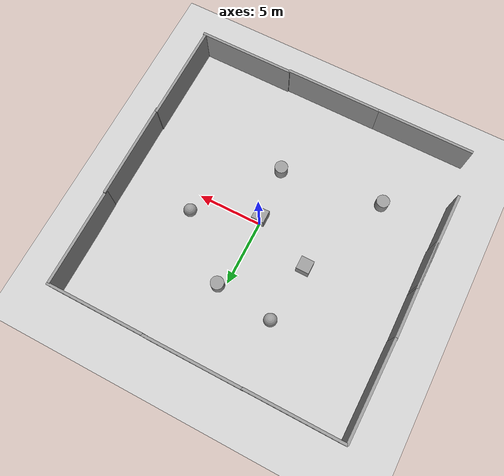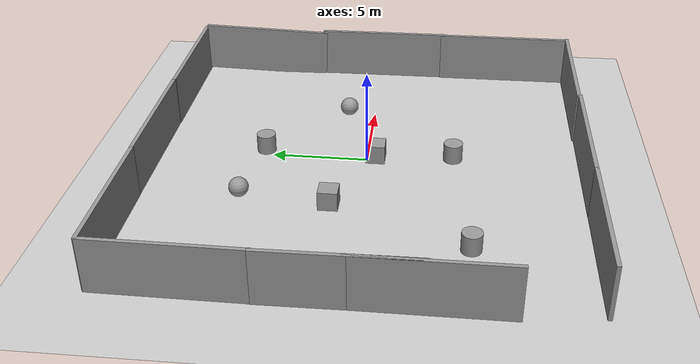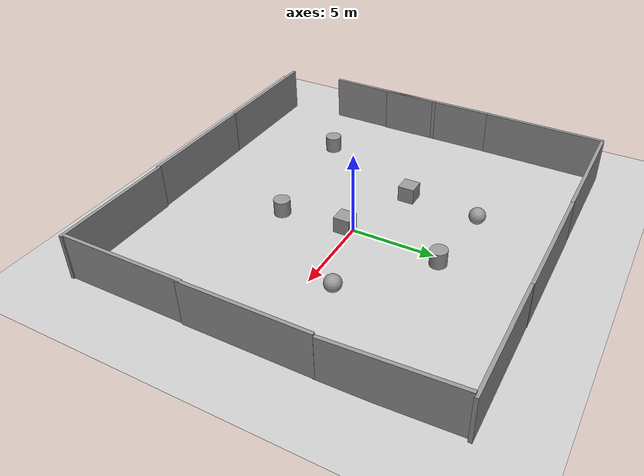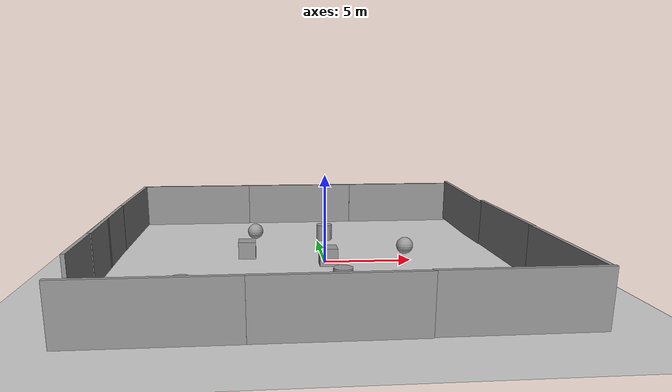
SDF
<sdf version="1.6">
 <world name="default">
  <light name="sun" type="directional">
   <pose>0 0 10 0 -0 0</pose>
   <diffuse>0.8 0.8 0.8 1</diffuse>
   <specular>0.2 0.2 0.2 1</specular>
   <attenuation>
    <range>1000</range>
    <constant>0.9</constant>
    <linear>0.01</linear>
    <quadratic>0.001</quadratic>
   </attenuation>
   <direction>-0.5 0.1 -0.9</direction>
  </light>
  <model name="ground_plane">
   <static>1</static>
   <link name="link">
    <collision name="collision">
     <geometry><plane><normal>0 0 1</normal><size>100 100</size></plane></geometry>
     <surface><friction><ode><mu>100</mu><mu2>50</mu2></ode></friction></surface>
    </collision>
    <visual name="visual">
     <cast_shadows>0</cast_shadows>
     <geometry><plane><normal>0 0 1</normal><size>100 100</size></plane></geometry>
     <material>
      <script><uri>file://media/materials/scripts/gazebo.material</uri><name>Gazebo/Grey</name></script>
     </material>
    </visual>
    <velocity_decay><linear>0</linear><angular>0</angular></velocity_decay>
   </link>
  </model>
  <physics name="default_physics" default="0" type="ode">
   <max_step_size>0.001</max_step_size>
   <real_time_factor>1</real_time_factor>
   <real_time_update_rate>1000</real_time_update_rate>
  </physics>
  <scene><ambient>0.4 0.4 0.4 1</ambient><background>0.7 0.7 0.7 1</background><shadows>1</shadows></scene>
  <model name="grey_wall">
   <static>1</static>
   <link name="link">
    <pose>0 0 1.4 0 -0 0</pose>
    <collision name="collision"><geometry><box><size>7.5 0.2 2.8</size></box></geometry></collision>
    <visual name="visual">
     <cast_shadows>0</cast_shadows>
     <geometry><box><size>7.5 0.2 2.8</size></box></geometry>
     <material>
      <script>
       <uri>model://grey_wall/materials/scripts</uri>
       <uri>model://grey_wall/materials/textures</uri>
       <name>vrc/grey_wall</name>
      </script>
     </material>
    </visual>
    <velocity_decay><linear>0</linear><angular>0</angular></velocity_decay>
   </link>
   <pose>-8.23095 11.0014 0 0 -0 0</pose>
  </model>
  <model name="grey_wall_0">
   <static>1</static>
   <link name="link">
    <pose>0 0 1.4 0 -0 0</pose>
    <collision name="collision"><geometry><box><size>7.5 0.2 2.8</size></box></geometry></collision>
    <visual name="visual">
     <cast_shadows>0</cast_shadows>
     <geometry><box><size>7.5 0.2 2.8</size></box></geometry>
     <material>
      <script>
       <uri>model://grey_wall/materials/scripts</uri>
       <uri>model://grey_wall/materials/textures</uri>
       <name>vrc/grey_wall</name>
      </script>
     </material>
    </visual>
    <velocity_decay><linear>0</linear><angular>0</angular></velocity_decay>
   </link>
   <pose>-0.796756 11.0181 0 0 -0 0</pose>
  </model>
  <model name="grey_wall_1">
   <static>1</static>
   <link name="link">
    <pose>0 0 1.4 0 -0 0</pose>
    <collision name="collision"><geometry><box><size>7.5 0.2 2.8</size></box></geometry></collision>
    <visual name="visual">
     <cast_shadows>0</cast_shadows>
     <geometry><box><size>7.5 0.2 2.8</size></box></geometry>
     <material>
      <script>
       <uri>model://grey_wall/materials/scripts</uri>
       <uri>model://grey_wall/materials/textures</uri>
       <name>vrc/grey_wall</name>
      </script>
     </material>
    </visual>
    <velocity_decay><linear>0</linear><angular>0</angular></velocity_decay>
   </link>
   <pose>6.69405 10.9984 0 0 -0 0</pose>
  </model>
  <model name="grey_wall_2">
   <static>1</static>
   <link name="link">
    <pose>0 0 1.4 0 -0 0</pose>
    <collision name="collision"><geometry><box><size>7.5 0.2 2.8</size></box></geometry></collision>
    <visual name="visual">
     <cast_shadows>0</cast_shadows>
     <geometry><box><size>7.5 0.2 2.8</size></box></geometry>
     <material>
      <script>
       <uri>model://grey_wall/materials/scripts</uri>
       <uri>model://grey_wall/materials/textures</uri>
       <name>vrc/grey_wall</name>
      </script>
     </material>
    </visual>
    <velocity_decay><linear>0</linear><angular>0</angular></velocity_decay>
   </link>
   <pose>-7.95346 -11.1906 0 0 -0 0</pose>
  </model>
  <model name="grey_wall_3">
   <static>1</static>
   <link name="link">
    <pose>0 0 1.4 0 -0 0</pose>
    <collision name="collision"><geometry><box><size>7.5 0.2 2.8</size></box></geometry></collision>
    <visual name="visual">
     <cast_shadows>0</cast_shadows>
     <geometry><box><size>7.5 0.2 2.8</size></box></geometry>
     <material>
      <script>
       <uri>model://grey_wall/materials/scripts</uri>
       <uri>model://grey_wall/materials/textures</uri>
       <name>vrc/grey_wall</name>
      </script>
     </material>
    </visual>
    <velocity_decay><linear>0</linear><angular>0</angular></velocity_decay>
   </link>
   <pose>-0.524266 -11.1812 0 0 -0 0</pose>
  </model>
  <model name="grey_wall_4">
   <static>1</static>
   <link name="link">
    <pose>0 0 1.4 0 -0 0</pose>
    <collision name="collision"><geometry><box><size>7.5 0.2 2.8</size></box></geometry></collision>
    <visual name="visual">
     <cast_shadows>0</cast_shadows>
     <geometry><box><size>7.5 0.2 2.8</size></box></geometry>
     <material>
      <script>
       <uri>model://grey_wall/materials/scripts</uri>
       <uri>model://grey_wall/materials/textures</uri>
       <name>vrc/grey_wall</name>
      </script>
     </material>
    </visual>
    <velocity_decay><linear>0</linear><angular>0</angular></velocity_decay>
   </link>
   <pose>6.84897 -11.1085 0 0 -0 0</pose>
  </model>
  <model name="grey_wall_5">
   <static>1</static>
   <link name="link">
    <pose>0 0 1.4 0 -0 0</pose>
    <collision name="collision"><geometry><box><size>7.5 0.2 2.8</size></box></geometry></collision>
    <visual name="visual">
     <cast_shadows>0</cast_shadows>
     <geometry><box><size>7.5 0.2 2.8</size></box></geometry>
     <material>
      <script>
       <uri>model://grey_wall/materials/scripts</uri>
       <uri>model://grey_wall/materials/textures</uri>
       <name>vrc/grey_wall</name>
      </script>
     </material>
    </visual>
    <velocity_decay><linear>0</linear><angular>0</angular></velocity_decay>
   </link>
   <pose>10.4206 -7.28777 0 0 0 -1.57076</pose>
  </model>
  <model name="grey_wall_6">
   <static>1</static>
   <link name="link">
    <pose>0 0 1.4 0 -0 0</pose>
    <collision name="collision"><geometry><box><size>7.5 0.2 2.8</size></box></geometry></collision>
    <visual name="visual">
     <cast_shadows>0</cast_shadows>
     <geometry><box><size>7.5 0.2 2.8</size></box></geometry>
     <material>
      <script>
       <uri>model://grey_wall/materials/scripts</uri>
       <uri>model://grey_wall/materials/textures</uri>
       <name>vrc/grey_wall</name>
      </script>
     </material>
    </visual>
    <velocity_decay><linear>0</linear><angular>0</angular></velocity_decay>
   </link>
   <pose>10.4561 -0.077268 0 0 -0 1.57597</pose>
  </model>
  <model name="grey_wall_7">
   <static>1</static>
   <link name="link">
    <pose>0 0 1.4 0 -0 0</pose>
    <collision name="collision"><geometry><box><size>7.5 0.2 2.8</size></box></geometry></collision>
    <visual name="visual">
     <cast_shadows>0</cast_shadows>
     <geometry><box><size>7.5 0.2 2.8</size></box></geometry>
     <material>
      <script>
       <uri>model://grey_wall/materials/scripts</uri>
       <uri>model://grey_wall/materials/textures</uri>
       <name>vrc/grey_wall</name>
      </script>
     </material>
    </visual>
    <velocity_decay><linear>0</linear><angular>0</angular></velocity_decay>
   </link>
   <pose>10.3574 7.30013 1e-06 -0.001078 -0.039101 1.59118</pose>
  </model>
  <model name="grey_wall_8">
   <static>1</static>
   <link name="link">
    <pose>0 0 1.4 0 -0 0</pose>
    <collision name="collision"><geometry><box><size>7.5 0.2 2.8</size></box></geometry></collision>
    <visual name="visual">
     <cast_shadows>0</cast_shadows>
     <geometry><box><size>7.5 0.2 2.8</size></box></geometry>
     <material>
      <script>
       <uri>model://grey_wall/materials/scripts</uri>
       <uri>model://grey_wall/materials/textures</uri>
       <name>vrc/grey_wall</name>
      </script>
     </material>
    </visual>
    <velocity_decay><linear>0</linear><angular>0</angular></velocity_decay>
   </link>
   <pose>-11.98 7.28848 0 0 -0 1.56</pose>
  </model>
  <model name="grey_wall_9">
   <static>1</static>
   <link name="link">
    <pose>0 0 1.4 0 -0 0</pose>
    <collision name="collision"><geometry><box><size>7.5 0.2 2.8</size></box></geometry></collision>
    <visual name="visual">
     <cast_shadows>0</cast_shadows>
     <geometry><box><size>7.5 0.2 2.8</size></box></geometry>
     <material>
      <script>
       <uri>model://grey_wall/materials/scripts</uri>
       <uri>model://grey_wall/materials/textures</uri>
       <name>vrc/grey_wall</name>
      </script>
     </material>
    </visual>
    <velocity_decay><linear>0</linear><angular>0</angular></velocity_decay>
   </link>
   <pose>-12.0086 0.01145 0 0 0 -1.56319</pose>
  </model>
  <model name="grey_wall_10">
   <static>1</static>
   <link name="link">
    <pose>0 0 1.4 0 -0 0</pose>
    <collision name="collision"><geometry><box><size>7.5 0.2 2.8</size></box></geometry></collision>
    <visual name="visual">
     <cast_shadows>0</cast_shadows>
     <geometry><box><size>7.5 0.2 2.8</size></box></geometry>
     <material>
      <script>
       <uri>model://grey_wall/materials/scripts</uri>
       <uri>model://grey_wall/materials/textures</uri>
       <name>vrc/grey_wall</name>
      </script>
     </material>
    </visual>
    <velocity_decay><linear>0</linear><angular>0</angular></velocity_decay>
   </link>
   <pose>-12.0217 -3.85294 0 0 -0 1.56631</pose>
  </model>
  <model name="unit_box_1">
   <pose>-4.44831 1.44204 0.5 0 -0 0</pose>
   <link name="link">
    <inertial>
     <mass>1</mass>
     <inertia><ixx>1</ixx><ixy>0</ixy><ixz>0</ixz><iyy>1</iyy><iyz>0</iyz><izz>1</izz></inertia>
    </inertial>
    <collision name="collision"><geometry><box><size>1 1 1</size></box></geometry></collision>
    <visual name="visual">
     <geometry><box><size>1 1 1</size></box></geometry>
     <material>
      <script><uri>file://media/materials/scripts/gazebo.material</uri><name>Gazebo/Grey</name></script>
     </material>
    </visual>
    <velocity_decay><linear>0</linear><angular>0</angular></velocity_decay>
   </link>
   <static>0</static>
  </model>
  <model name="unit_cylinder_1">
   <pose>-7.45274 -5.51884 0.499995 0 -0 0</pose>
   <link name="link">
    <inertial>
     <mass>1</mass>
     <inertia><ixx>1</ixx><ixy>0</ixy><ixz>0</ixz><iyy>1</iyy><iyz>0</iyz><izz>1</izz></inertia>
    </inertial>
    <collision name="collision">
     <geometry><cylinder><radius>0.5</radius><length>1</length></cylinder></geometry>
    </collision>
    <visual name="visual">
     <geometry><cylinder><radius>0.5</radius><length>1</length></cylinder></geometry>
     <material>
      <script><uri>file://media/materials/scripts/gazebo.material</uri><name>Gazebo/Grey</name></script>
     </material>
    </visual>
    <velocity_decay><linear>0</linear><angular>0</angular></velocity_decay>
   </link>
   <static>0</static>
  </model>
  <model name="unit_cylinder_2">
   <pose>0.46531 -4.53037 0.499996 1e-06 -1e-06 0</pose>
   <link name="link">
    <inertial>
     <mass>1</mass>
     <inertia><ixx>1</ixx><ixy>0</ixy><ixz>0</ixz><iyy>1</iyy><iyz>0</iyz><izz>1</izz></inertia>
    </inertial>
    <collision name="collision">
     <geometry><cylinder><radius>0.5</radius><length>1</length></cylinder></geometry>
    </collision>
    <visual name="visual">
     <geometry><cylinder><radius>0.5</radius><length>1</length></cylinder></geometry>
     <material>
      <script><uri>file://media/materials/scripts/gazebo.material</uri><name>Gazebo/Grey</name></script>
     </material>
    </visual>
    <velocity_decay><linear>0</linear><angular>0</angular></velocity_decay>
   </link>
   <static>0</static>
  </model>
  <model name="unit_box_2">
   <pose>0.147 -0.471211 0.5 0 -0 0</pose>
   <link name="link">
    <inertial>
     <mass>1</mass>
     <inertia><ixx>1</ixx><ixy>0</ixy><ixz>0</ixz><iyy>1</iyy><iyz>0</iyz><izz>1</izz></inertia>
    </inertial>
    <collision name="collision"><geometry><box><size>1 1 1</size></box></geometry></collision>
    <visual name="visual">
     <geometry><box><size>1 1 1</size></box></geometry>
     <material>
      <script><uri>file://media/materials/scripts/gazebo.material</uri><name>Gazebo/Grey</name></script>
     </material>
    </visual>
    <velocity_decay><linear>0</linear><angular>0</angular></velocity_decay>
   </link>
   <static>0</static>
  </model>
  <model name="unit_cylinder_3">
   <pose>0.513287 5.45542 0.499996 1e-06 -1e-06 0</pose>
   <link name="link">
    <inertial>
     <mass>1</mass>
     <inertia><ixx>1</ixx><ixy>0</ixy><ixz>0</ixz><iyy>1</iyy><iyz>0</iyz><izz>1</izz></inertia>
    </inertial>
    <collision name="collision">
     <geometry><cylinder><radius>0.5</radius><length>1</length></cylinder></geometry>
    </collision>
    <visual name="visual">
     <geometry><cylinder><radius>0.5</radius><length>1</length></cylinder></geometry>
     <material>
      <script><uri>file://media/materials/scripts/gazebo.material</uri><name>Gazebo/Grey</name></script>
     </material>
    </visual>
    <velocity_decay><linear>0</linear><angular>0</angular></velocity_decay>
   </link>
   <static>0</static>
  </model>
  <model name="unit_sphere_1">
   <pose>-4 6 0.5 0 -0 0</pose>
   <link name="link">
    <inertial>
     <mass>1</mass>
     <inertia><ixx>1</ixx><ixy>0</ixy><ixz>0</ixz><iyy>1</iyy><iyz>0</iyz><izz>1</izz></inertia>
    </inertial>
    <collision name="collision"><geometry><sphere><radius>0.5</radius></sphere></geometry></collision>
    <visual name="visual">
     <geometry><sphere><radius>0.5</radius></sphere></geometry>
     <material>
      <script><uri>file://media/materials/scripts/gazebo.material</uri><name>Gazebo/Grey</name></script>
     </material>
    </visual>
    <velocity_decay><linear>0</linear><angular>0</angular></velocity_decay>
   </link>
   <static>0</static>
  </model>
  <model name="unit_sphere_2">
   <pose>5 1.47573 0.5 0 -0 0</pose>
   <link name="link">
    <inertial>
     <mass>1</mass>
     <inertia><ixx>1</ixx><ixy>0</ixy><ixz>0</ixz><iyy>1</iyy><iyz>0</iyz><izz>1</izz></inertia>
    </inertial>
    <collision name="collision"><geometry><sphere><radius>0.5</radius></sphere></geometry></collision>
    <visual name="visual">
     <geometry><sphere><radius>0.5</radius></sphere></geometry>
     <material>
      <script><uri>file://media/materials/scripts/gazebo.material</uri><name>Gazebo/Grey</name></script>
     </material>
    </visual>
    <velocity_decay><linear>0</linear><angular>0</angular></velocity_decay>
   </link>
   <static>0</static>
  </model>
  <spherical_coordinates>
   <surface_model>EARTH_WGS84</surface_model>
   <latitude_deg>0</latitude_deg>
   <longitude_deg>0</longitude_deg>
   <elevation>0</elevation>
   <heading_deg>0</heading_deg>
  </spherical_coordinates>
  <gravity>0 0 -9.8</gravity>
  <magnetic_field>6e-06 2.3e-05 -4.2e-05</magnetic_field>
  <atmosphere type="adiabatic"/>
 </world>
</sdf>
